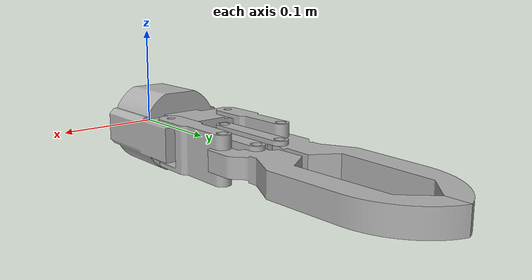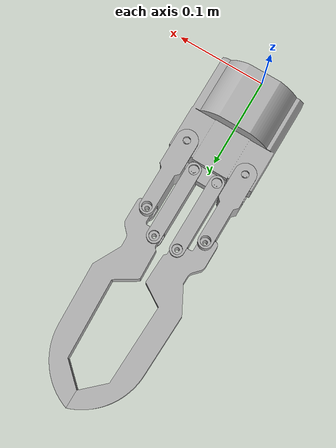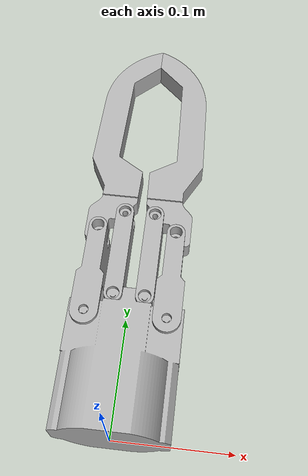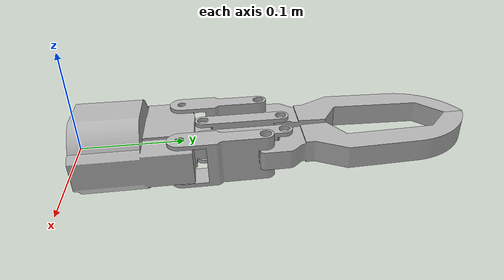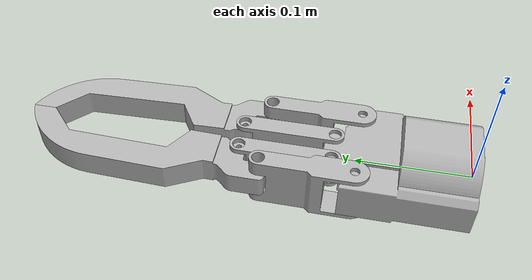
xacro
<?xml version="1.0" ?>
<robot name="gripper_sim" xmlns:xacro="http://www.ros.org/wiki/xacro">

  <xacro:include filename="$(find gripper_sim_description)/urdf/materials.xacro" />
  <xacro:include filename="$(find gripper_sim_description)/urdf/gripper_sim.ros2control" />
  <xacro:include filename="$(find gripper_sim_description)/urdf/gripper_sim.gazebo" />

  <!-- base_link -->
  <link name="gripper_base_link">
    <inertial>
      <origin xyz="-7.716149132454141e-10 0.04922395655438073 1.7889869956150612e-06" rpy="0 0 0"/>
      <mass value="4.518092925552626"/>
      <inertia ixx="0.006001" iyy="0.004341" izz="0.00742" ixy="0.0" iyz="-0.0" ixz="-0.0"/>
    </inertial>
    <visual>
      <origin xyz="0 0 0" rpy="0 0 0"/>
      <geometry>
        <mesh filename="file://$(find gripper_sim_description)/meshes/gripper_base_link.stl" scale="0.001 0.001 0.001"/>
      </geometry>
      <material name="silver"/>
    </visual>
    <collision>
      <origin xyz="0 0 0" rpy="0 0 0"/>
      <geometry>
        <mesh filename="file://$(find gripper_sim_description)/meshes/gripper_base_link.stl" scale="0.001 0.001 0.001"/>
      </geometry>
    </collision>
  </link>

  <!-- outer_link_x -->
  <link name="outer_link_x">
    <inertial>
      <origin xyz="-9.260343256101145e-10 0.04369513701405851 0.019099999838883316" rpy="0 0 0"/>
      <mass value="0.38812840268424476"/>
      <inertia ixx="0.000251" iyy="9.7e-05" izz="0.000178" ixy="0.0" iyz="0.0" ixz="0.0"/>
    </inertial>
    <visual>
      <origin xyz="0.03475 -0.09835 0.0191" rpy="0 0 0"/>
      <geometry>
        <mesh filename="file://$(find gripper_sim_description)/meshes/outer_link_x_1.stl" scale="0.001 0.001 0.001"/>
      </geometry>
      <material name="silver"/>
    </visual>
  </link>

  <!-- inner_link_x -->
  <link name="inner_link_x">
    <inertial>
      <origin xyz="8.308782845772855e-10 0.0406616469961668 0.010199998166905287" rpy="0 0 0"/>
      <mass value="0.2420308473406661"/>
      <inertia ixx="0.000119" iyy="2.3e-05" izz="0.000106" ixy="-0.0" iyz="-0.0" ixz="-0.0"/>
    </inertial>
    <visual>
      <origin xyz="0.01375 -0.11935 0.0102" rpy="0 0 0"/>
      <geometry>
        <mesh filename="file://$(find gripper_sim_description)/meshes/inner_link_x_1.stl" scale="0.001 0.001 0.001"/>
      </geometry>
      <material name="silver"/>
    </visual>
  </link>

  <!-- finger_x -->
  <link name="finger_x">
    <inertial>
      <origin xyz="0.004414324058183736 0.10060021355144155 0.009659016389681916" rpy="0 0 0"/>
      <mass value="1.0559261647411544"/>
      <inertia ixx="0.003866" iyy="0.000206" izz="0.003984" ixy="-4.7e-05" iyz="1e-06" ixz="-0.0"/>
    </inertial>
    <visual>
      <origin xyz="0.03475 -0.17835 0.0097" rpy="0 0 0"/>
      <geometry>
        <mesh filename="file://$(find gripper_sim_description)/meshes/finger_x_1.stl" scale="0.001 0.001 0.001"/>
      </geometry>
      <material name="silver"/>
    </visual>
    <collision>
      <origin xyz="0.03475 -0.17835 0.0097" rpy="0 0 0"/>
      <geometry>
        <mesh filename="file://$(find gripper_sim_description)/meshes/finger_x_1.stl" scale="0.001 0.001 0.001"/>
      </geometry>
    </collision>
  </link>

  <!-- outer_link_y -->
  <link name="outer_link_y">
    <inertial>
      <origin xyz="9.260313627024175e-10 0.043695137014058624 0.01909999983888327" rpy="0 0 0"/>
      <mass value="0.3881284026842447"/>
      <inertia ixx="0.000251" iyy="9.7e-05" izz="0.000178" ixy="0.0" iyz="0.0" ixz="-0.0"/>
    </inertial>
    <visual>
      <origin xyz="-0.03475 -0.09835 0.0191" rpy="0 0 0"/>
      <geometry>
        <mesh filename="file://$(find gripper_sim_description)/meshes/outer_link_y_1.stl" scale="0.001 0.001 0.001"/>
      </geometry>
      <material name="silver"/>
    </visual>
  </link>

  <!-- inner_link_y -->
  <link name="inner_link_y">
    <inertial>
      <origin xyz="8.501813159728089e-10 0.040661646996167436 0.010199998166903129" rpy="0 0 0"/>
      <mass value="0.24203084734066602"/>
      <inertia ixx="0.000119" iyy="2.3e-05" izz="0.000106" ixy="0.0" iyz="-0.0" ixz="0.0"/>
    </inertial>
    <visual>
      <origin xyz="-0.01375 -0.11935 0.0102" rpy="0 0 0"/>
      <geometry>
        <mesh filename="file://$(find gripper_sim_description)/meshes/inner_link_y_1.stl" scale="0.001 0.001 0.001"/>
      </geometry>
      <material name="silver"/>
    </visual>
  </link>

  <!-- finger_y -->
  <link name="finger_y">
    <inertial>
      <origin xyz="-0.004414324102977124 0.10060021370563549 0.009659016389695553" rpy="0 0 0"/>
      <mass value="1.0559261662967498"/>
      <inertia ixx="0.003866" iyy="0.000206" izz="0.003984" ixy="4.7e-05" iyz="1e-06" ixz="0.0"/>
    </inertial>
    <visual>
      <origin xyz="-0.03475 -0.17835 0.0097" rpy="0 0 0"/>
      <geometry>
        <mesh filename="file://$(find gripper_sim_description)/meshes/finger_y_1.stl" scale="0.001 0.001 0.001"/>
      </geometry>
      <material name="silver"/>
    </visual>
    <collision>
      <origin xyz="-0.03475 -0.17835 0.0097" rpy="0 0 0"/>
      <geometry>
        <mesh filename="file://$(find gripper_sim_description)/meshes/finger_y_1.stl" scale="0.001 0.001 0.001"/>
      </geometry>
    </collision>
  </link>

 <!-- Joints (Actuated) -->
  <joint name="base_to_outer_x" type="revolute">
    <origin xyz="-0.03475 0.09835 -0.0191" rpy="0 0 0"/>
    <parent link="gripper_base_link"/>
    <child link="outer_link_x"/>
    <axis xyz="0 0 1"/>
    <limit lower="-1.57" upper="1.57" effort="5.0" velocity="1.0"/>
  </joint>

  <joint name="base_to_outer_y" type="revolute">
    <origin xyz="0.03475 0.09835 -0.0191" rpy="0 0 0"/>
    <parent link="gripper_base_link"/>
    <child link="outer_link_y"/>
    <axis xyz="0 0 1"/>
    <limit lower="-1.57" upper="1.57" effort="5.0" velocity="1.0"/>
  </joint>

  <!-- Joints (Inner Passive Connections) -->
  <joint name="base_to_inner_x" type="revolute">
    <origin xyz="-0.01375 0.11935 -0.0102" rpy="0 0 0"/>
    <parent link="gripper_base_link"/>
    <child link="inner_link_x"/>
    <axis xyz="0 0 1"/>
    <limit lower="-1.57" upper="1.57" effort="0.0" velocity="0.0"/>
  </joint>

  <joint name="base_to_inner_y" type="revolute">
    <origin xyz="0.01375 0.11935 -0.0102" rpy="0 0 0"/>
    <parent link="gripper_base_link"/>
    <child link="inner_link_y"/>
    <axis xyz="0 0 1"/>
    <limit lower="-1.57" upper="1.57" effort="0.0" velocity="0.0"/>
  </joint>

  <!-- Joints (Passive or Mimic) -->
  <joint name="outer_x_to_finger_x" type="revolute">
    <origin xyz="0.0 0.08 0.0094" rpy="0 0 0"/>
    <parent link="outer_link_x"/>
    <child link="finger_x"/>
    <axis xyz="0 0 1"/>
    <limit lower="-1.57" upper="1.57" effort="5.0" velocity="1.0"/>
  </joint>

  <joint name="outer_y_to_finger_y" type="revolute">
    <origin xyz="0.0 0.08 0.0094" rpy="0 0 0"/>
    <parent link="outer_link_y"/>
    <child link="finger_y"/>
    <axis xyz="0 0 1"/>
    <limit lower="-1.57" upper="1.57" effort="5.0" velocity="1.0"/>
  </joint>

</robot>

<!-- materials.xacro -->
<robot name="gripper_sim" xmlns:xacro="http://www.ros.org/wiki/xacro" >

<material name="silver">
  <color rgba="0.700 0.700 0.700 1.000"/>
</material>

</robot>

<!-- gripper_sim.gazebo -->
<robot name="gripper_sim" xmlns:xacro="http://www.ros.org/wiki/xacro" >

<xacro:property name="body_color" value="Gazebo/Silver" />

<gazebo reference="base_link">
  <material>${body_color}</material>
  <mu1>0.2</mu1>
  <mu2>0.2</mu2>
  <self_collide>true</self_collide>
  <gravity>true</gravity>
</gazebo>

<gazebo reference="outer_link_y">
  <material>${body_color}</material>
  <mu1>0.2</mu1>
  <mu2>0.2</mu2>
  <self_collide>true</self_collide>
</gazebo>

<gazebo reference="inner_link_y">
  <material>${body_color}</material>
  <mu1>0.2</mu1>
  <mu2>0.2</mu2>
  <self_collide>true</self_collide>
</gazebo>

<gazebo reference="finger_y">
  <material>${body_color}</material>
  <mu1>0.2</mu1>
  <mu2>0.2</mu2>
  <self_collide>true</self_collide>
</gazebo>

<gazebo reference="inner_link_x">
  <material>${body_color}</material>
  <mu1>0.2</mu1>
  <mu2>0.2</mu2>
  <self_collide>true</self_collide>
</gazebo>

<gazebo reference="outer_link_x">
  <material>${body_color}</material>
  <mu1>0.2</mu1>
  <mu2>0.2</mu2>
  <self_collide>true</self_collide>
</gazebo>

<gazebo reference="finger_x">
  <material>${body_color}</material>
  <mu1>0.2</mu1>
  <mu2>0.2</mu2>
  <self_collide>true</self_collide>
</gazebo>

<gazebo reference="finger_x">
  <material>${body_color}</material>
  <mu1>0.2</mu1>
  <mu2>0.2</mu2>
  <self_collide>true</self_collide>
</gazebo>

<gazebo reference="finger_y">
  <material>${body_color}</material>
  <mu1>0.2</mu1>
  <mu2>0.2</mu2>
  <self_collide>true</self_collide>
</gazebo>

</robot>
